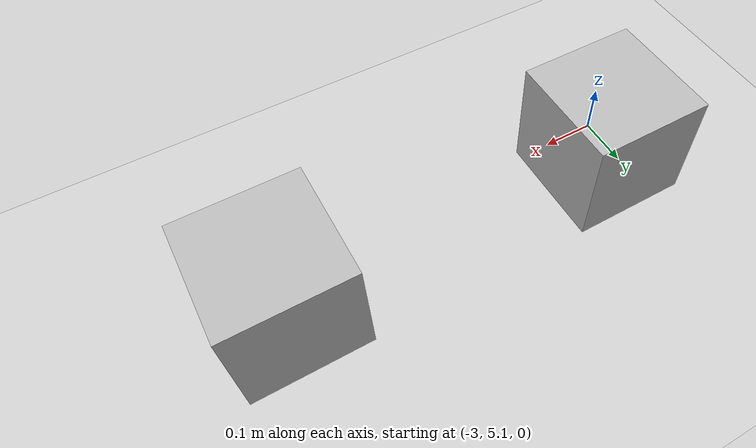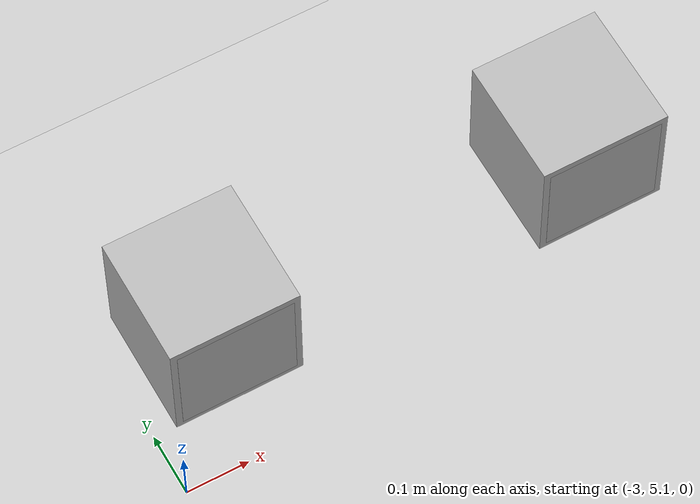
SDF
<sdf version="1.6">
 <world name="default">
  <include><uri>model://ground_plane</uri></include>
  <include><uri>model://sun</uri></include>
  <scene><shadows>false</shadows></scene>
  <physics type="ode">
   <real_time_update_rate>1000.0</real_time_update_rate>
   <max_step_size>0.001</max_step_size>
   <real_time_factor>1</real_time_factor>
   <ode>
    <solver>
     <type>quick</type>
     <iters>150</iters>
     <precon_iters>0</precon_iters>
     <sor>1.400000</sor>
     <use_dynamic_moi_rescaling>1</use_dynamic_moi_rescaling>
    </solver>
    <constraints>
     <cfm>0.00001</cfm>
     <erp>0.2</erp>
     <contact_max_correcting_vel>2000.000000</contact_max_correcting_vel>
     <contact_surface_layer>0.01000</contact_surface_layer>
    </constraints>
   </ode>
  </physics>
  <include><uri>model://aruco_box_id_25</uri><pose>-2.884 5.25 0.1 0 0 3.14159</pose></include>
  <include><uri>model://aruco_box_id_20</uri><pose>-2.3 5.25 0.1 0 0 3.14159</pose></include>
 </world>
</sdf>

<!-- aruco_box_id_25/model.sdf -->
<sdf version="1.6">
  <model name="aruco_box_id_25">
    <link name="aruco_link">
      <pose>0 0 0.1 0 0 0</pose>

      <collision name="collision">
        <geometry>
          <box>
            <size>0.2 0.2 0.2</size>
          </box>
        </geometry>
      </collision>

      <visual name="visual">
        <geometry>
          <box>
            <size>0.2 0.2 0.2</size>
          </box>
        </geometry>
      </visual>

      <!-- Marker face (front, upright) -->
      <visual name="aruco_marker_face">
        <pose>0 0.101 0 1.5708 0 3.14159</pose>
        <geometry>
          <plane>
            <size>0.18 0.18</size>
          </plane>
        </geometry>
        <material>
          <script>
            <uri>model://aruco_box_id_25/materials/scripts</uri>
            <uri>model://aruco_box_id_25/materials/textures</uri>
            <name>aruco/marker</name>
          </script>
        </material>
      </visual>

    </link>
  </model>
</sdf>

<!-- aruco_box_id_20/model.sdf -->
<sdf version="1.6">
  <model name="aruco_box_id_20">
    <link name="aruco_link">
      <pose>0 0 0.1 0 0 0</pose>

      <collision name="collision">
        <geometry>
          <box>
            <size>0.2 0.2 0.2</size>
          </box>
        </geometry>
      </collision>

      <visual name="visual">
        <geometry>
          <box>
            <size>0.2 0.2 0.2</size>
          </box>
        </geometry>
      </visual>

      <!-- Marker face (front, upright) -->
      <visual name="aruco_marker_face">
        <pose>0 0.101 0 1.5708 0 3.14159</pose>
        <geometry>
          <plane>
            <size>0.18 0.18</size>
          </plane>
        </geometry>
        <material>
          <script>
            <uri>model://aruco_box_id_20/materials/scripts</uri>
            <uri>model://aruco_box_id_20/materials/textures</uri>
            <name>aruco/marker_20</name>
          </script>
        </material>
      </visual>

    </link>
  </model>
</sdf>
